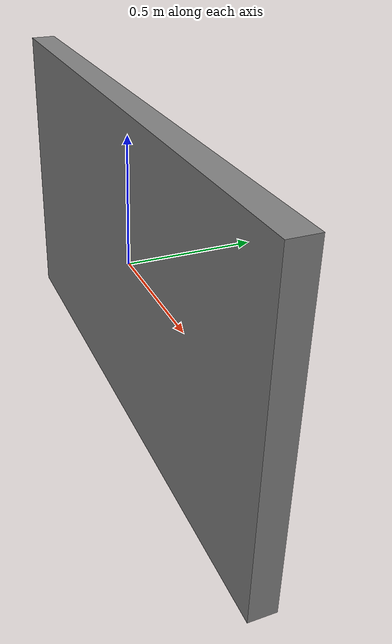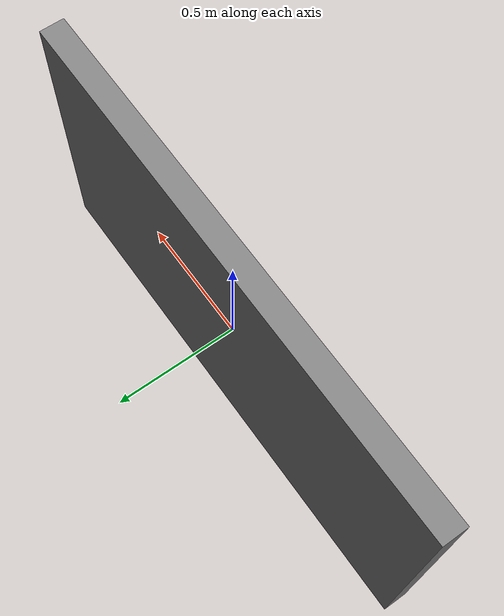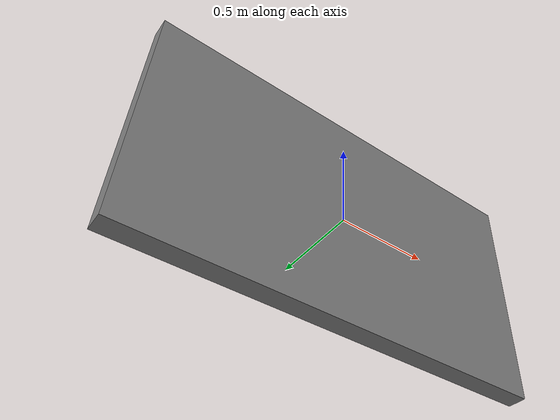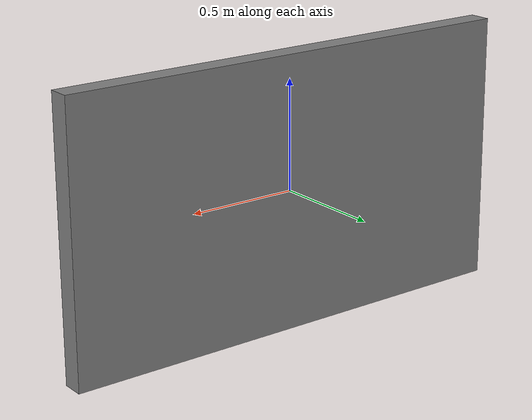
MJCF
<mujoco>
  <compiler meshdir="../meshes"/>
  <option ccd_iterations="35">
    <flag multiccd="enable"/>
  </option>
  <asset>
    <mesh name="can_bottom" file="can_bottom.stl"/>
  </asset>
  <worldbody>
    <body name="table" mocap="true">
      <geom type="box" size="1.10703325 0.05026174 0.61995101"/>
    </body>
    <body name="can_bottom">
      <freejoint/>
      <geom type="mesh" mesh="can_bottom"/>
    </body>
  </worldbody>
</mujoco>
